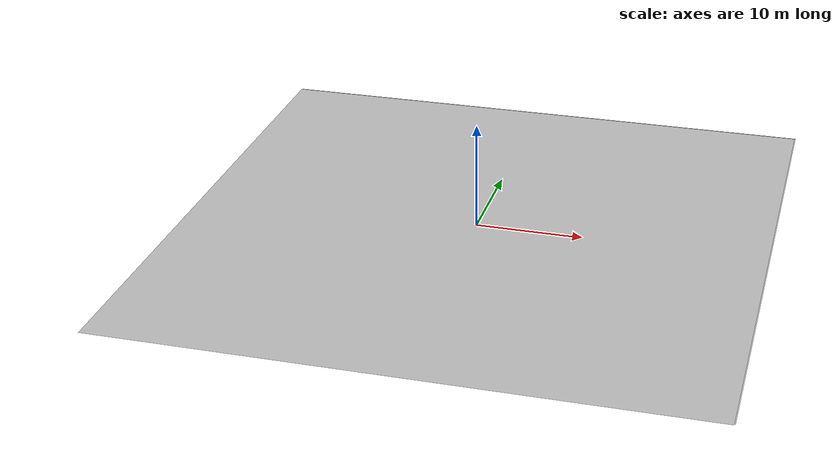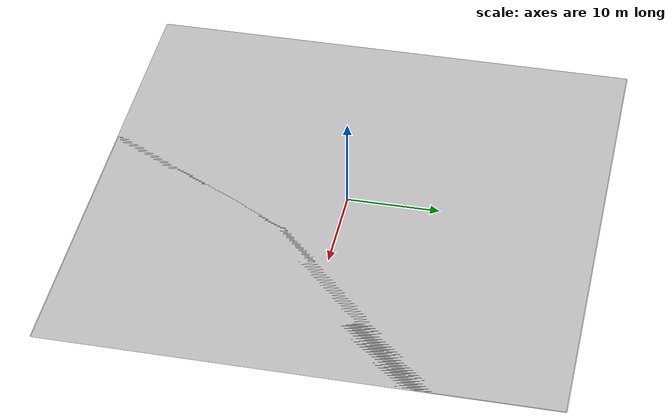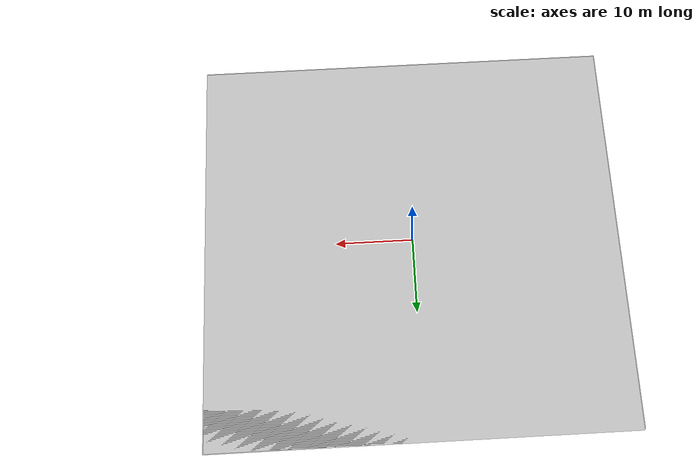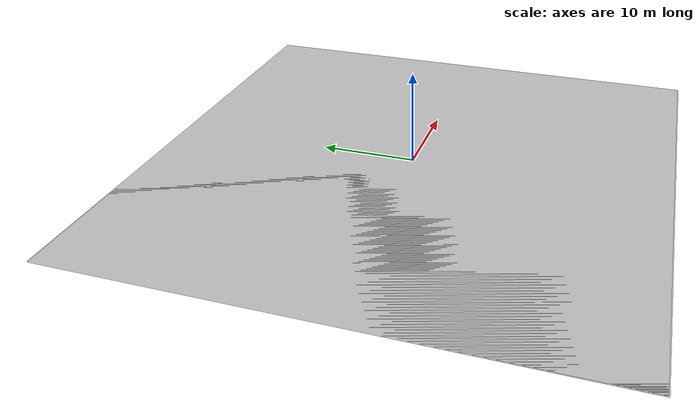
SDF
<sdf version="1.9">
 <world name="default">
  <spherical_coordinates>
   <surface_model>EARTH_WGS84</surface_model>
   <latitude_deg>47.397742999999998</latitude_deg>
   <longitude_deg>8.5455939999999995</longitude_deg>
   <elevation>0</elevation>
   <heading_deg>0</heading_deg>
  </spherical_coordinates>
  <physics name="default_physics" default="false" type="ode">
   <ode>
    <solver>
     <type>quick</type>
     <iters>50</iters>
     <sor>1</sor>
     <use_dynamic_moi_rescaling>false</use_dynamic_moi_rescaling>
    </solver>
    <constraints>
     <cfm>0</cfm>
     <erp>0.20000000000000001</erp>
     <contact_max_correcting_vel>1000</contact_max_correcting_vel>
     <contact_surface_layer>0.001</contact_surface_layer>
    </constraints>
   </ode>
   <max_step_size>0.0040000000000000001</max_step_size>
   <real_time_factor>1</real_time_factor>
   <real_time_update_rate>250</real_time_update_rate>
  </physics>
  <scene>
   <shadows>false</shadows>
   <ambient>0.4 0.4 0.4 1</ambient>
   <background>0.7 0.7 0.7 1</background>
   <grid>false</grid>
  </scene>
  <gravity>0 0 -9.8066</gravity>
  <magnetic_field>6e-06 2.3e-05 -4.2e-05</magnetic_field>
  <atmosphere type="adiabatic"/>
  <model name="ground_plane">
   <self_collide>true</self_collide>
   <include merge="true">
    <uri>file:///home/leticia/ros2_ws/src/inspection_drone_simulation/models/grass_plane/model.sdf</uri>
   </include>
  </model>
  <model name="three_power_towers">
   <pose>0.1 0.1 0 0 -0 0</pose>
   <self_collide>true</self_collide>
   <include merge="true">
    <uri>file:///home/leticia/ros2_ws/src/inspection_drone_simulation/models/three_power_towers/model.sdf</uri>
   </include>
  </model>
  <light name="sun" type="directional">
   <pose>250 250 600 0 -0 0</pose>
   <intensity>1</intensity>
   <direction>0 0 -1</direction>
   <diffuse>0.8 0.8 0.8 1</diffuse>
   <specular>0.2 0.2 0.2 1</specular>
   <attenuation>
    <range>1000</range>
    <linear>0.01</linear>
    <constant>0.90000000000000002</constant>
    <quadratic>0.001</quadratic>
   </attenuation>
   <spot><inner_angle>0</inner_angle><outer_angle>0</outer_angle><falloff>0</falloff></spot>
  </light>
  <model name="x500_base">
   <self_collide>true</self_collide>
   <include merge="true">
    <uri>file:///home/leticia/ros2_ws/src/inspection_drone_simulation/models/drone/model.sdf</uri>
   </include>
  </model>
 </world>
</sdf>

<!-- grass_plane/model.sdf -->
<sdf version="1.5">
  <model name="grass_plane">
    <static>true</static>
    <link name="link">
      <pose>0 0 0 0 0 0</pose>
      <collision name="collision">
        <pose>0 0 0.15 0 0 0</pose>
        <geometry>
          <plane>
            <normal>0 0 1</normal>
            <size>250 250</size>
          </plane>
        </geometry>
        <surface>
          <friction>
            <ode>
              <mu>1</mu>
              <mu2>1</mu2>
            </ode>
          </friction>
        </surface>
      </collision>
      <visual name="visual">
        <geometry>
          <mesh>
            <uri>file:///home/leticia/ros2_ws/src/inspection_drone_simulation/models/grass_plane/meshes/grass_plane.dae</uri>
            <scale>1 1 1</scale>
          </mesh>
        </geometry>
      </visual>
    </link>
  </model>
</sdf>
